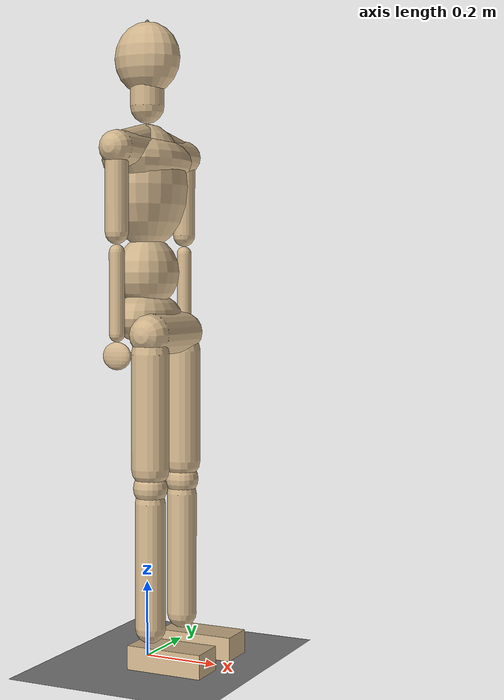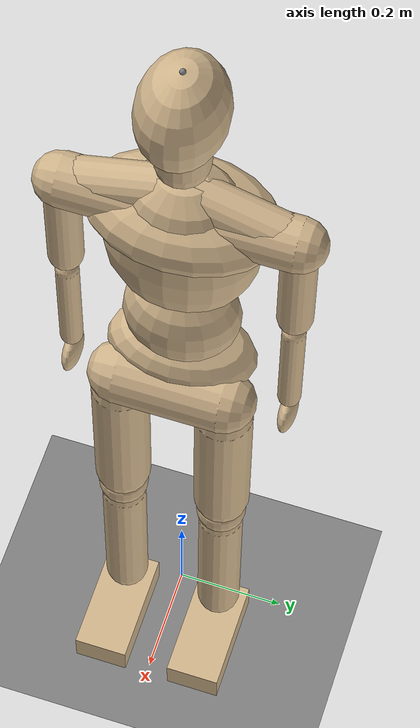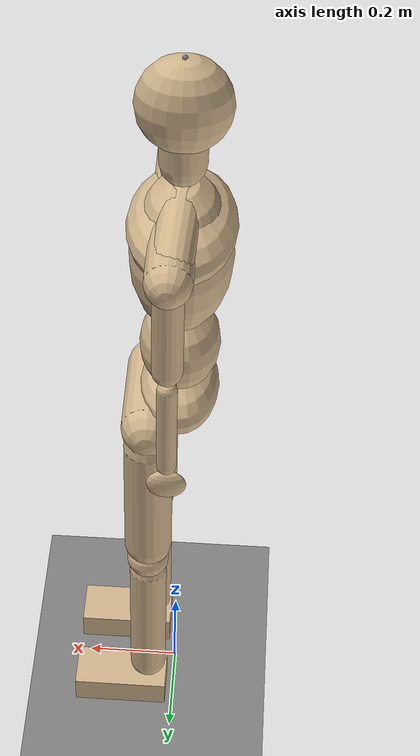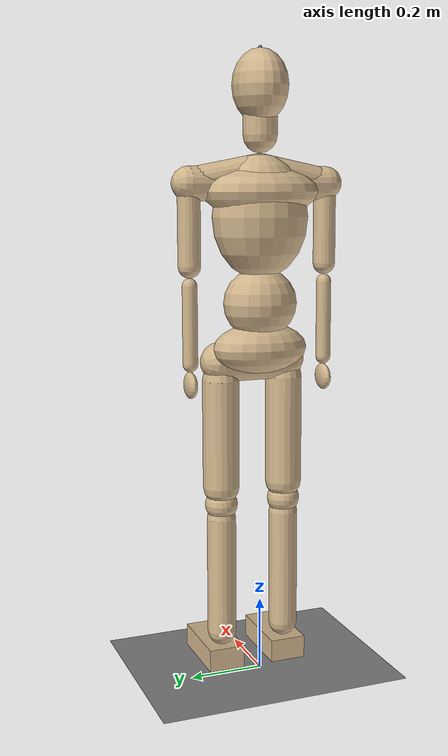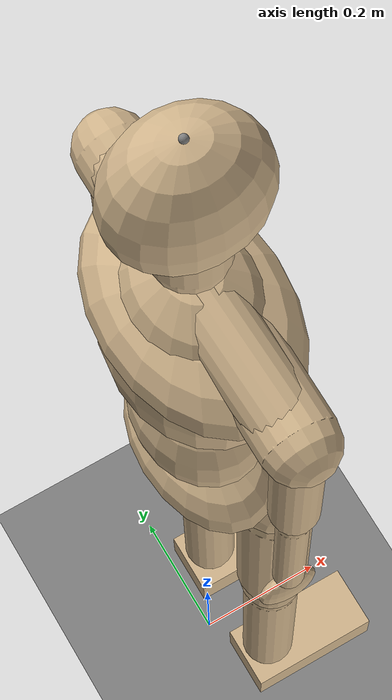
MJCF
<!-- GENERATED by scripts/pre_processor.py from models/freyja_template.xml and the Google Sheet (snapshot sha256:4db751576eb9). Do not edit; change the inputs and rebuild. -->
<mujoco model="freyja">
    <compiler angle="degree"/>
    <option timestep="0.002" gravity="0 0 -9.81"/>
    <asset>
        <texture type="skybox" builtin="gradient" rgb1="0.4 0.6 0.8" rgb2="0 0 0" width="512" height="3072" mark="random" markrgb="1 1 1"/>
    </asset>

    <worldbody>
        <geom name="floor" type="plane" size="10 10 0.1"  pos="0 0 0"/> <!--floor must be at z=0: the sheet's pelvis pos_z is the standing height above it--> <!--design choice, no sheet source-->
        <light pos="0 0 3" dir="0 0 -1"/>

        <body name="pelvis" pos="0 0 0.964735874439">
            <inertial pos="-0.00101007040359 -0.000224460089686 -0.0260373704036" mass="9.49" fullinertia="0.0989845173877 0.0745999725899 0.119532082342 1.19532082342e-05 -0.0138179087188 1.19532082342e-05"/>
            <geom type="capsule" fromto="0.0566394618834 -0.0923013452915 -0.0975457399103 0.0566394618834 0.0923013452915 -0.0975457399103" size="0.055" mass="0" rgba="0.82 0.71 0.55 1.0"/> <!--hip girdle: capsule centres on the hip joint centres-->
            <geom type="ellipsoid" pos="0 0 -0.0561150224215" size="0.08 0.13 0.0673380269058" mass="0" rgba="0.82 0.71 0.55 1.0"/> <!--iliac wings; reaches up into the abdomen--> <!--design choice, no sheet source-->
            <joint type="free"/>

            <body name="thigh_right" pos="0.0566394618834 -0.0923013452915 -0.0975457399103">
                <inertial pos="-0.0306094336323 -0.00357772600897 -0.149866967265" mass="9.49" fullinertia="0.144118169569 0.153566082871 0.0541380428871 0.000599867511214 0.00734837701238 0.00734837701238"/>
                <geom type="capsule" fromto="0 0 -0.05 0 0 -0.347525112108" size="0.05" mass="0" rgba="0.82 0.71 0.55 1.0"/> <!--end spheres touch both joints-->
                <joint name="hip_fe_right" type="hinge" axis="0 -1 0" limited="true" range="-18.1 133.8"/> <!--fe=flexion/extension-->
                <joint name="hip_aa_right" type="hinge" axis="1 0 0" limited="true" range="-40.5 25.6"/> <!--aa=ab/adduction-->
                <joint name="hip_ier_right" type="hinge" axis="0 0 1" limited="true" range="-44.2 44.4"/> <!--ier=internal/external rotation-->

                <body name="shank_right" pos="0 0 -0.397525112108">
                    <inertial pos="-0.0199412860987 -0.0126159156951 -0.164413869058" mass="2.925" fullinertia="0.0379800998191 0.0379800998191 0.00484440048713 -4.84440048713e-05 0.000193776019485 -0.00174398417537"/>
                    <geom type="capsule" fromto="0 0 -0.04 0 0 -0.366965022422" size="0.04" mass="0" rgba="0.82 0.71 0.55 1.0"/> <!--end spheres touch both joints-->
                    <geom type="sphere" pos="0 0 0" size="0.045" mass="0" rgba="0.82 0.71 0.55 1.0"/> <!--centred on the knee-->
                    <joint name="knee_right" type="hinge" axis="0 1 0" limited="true" range="-1.6 141.9"/>

                    <body name="foot_right" pos="0 0 -0.406965022422">
                        <inertial pos="0.04455 -0.006435 -0.03597" mass="0.65" fullinertia="0.000511421625 0.002167790625 0.002293434 -6.37065e-05 -0.0001769625 2.8314e-05"/>
                        <geom type="box" pos="0.061875 0 -0.03135" size="0.103125 0.050 0.03135" friction="1.0 0.005 0.0001" condim="3" rgba="0.82 0.71 0.55 1.0"/> <!--sole on the floor at neutral. extend condim to 4 for foot turning--> <!--design choice, no sheet source-->
                        <site name="site_sole_right" pos="0 0 -0.0627"/> <!--ankle joint centre minus the ankle height: the floor at neutral-->
                        <joint name="ankle_pdflex_right" type="hinge" axis="0 -1 0" limited="true" range="-62.1 25"/> <!--pdflex=plantar/dorsiflexion-->
                        <joint name="ankle_ie_right" type="hinge" axis="1 0 0" limited="true" range="-19.2 36.2"/> <!--ie=inversion/eversion-->
                    </body>
                </body>
            </body>

            <!--mirroring in y. "0 1 0" axis stays unchanged "1 0 0" and "0 0 1" flip signs as do all com, position, and inertial elements involving y-->
            <body name="thigh_left" pos="0.0566394618834 0.0923013452915 -0.0975457399103">
                <inertial pos="-0.0306094336323 0.00357772600897 -0.149866967265" mass="9.49" fullinertia="0.144118169569 0.153566082871 0.0541380428871 -0.000599867511214 0.00734837701238 -0.00734837701238"/>
                <geom type="capsule" fromto="0 0 -0.05 0 0 -0.347525112108" size="0.05" mass="0" rgba="0.82 0.71 0.55 1.0"/> <!--end spheres touch both joints-->
                <joint name="hip_fe_left" type="hinge" axis="0 -1 0" limited="true" range="-18.1 133.8"/> <!--fe=flexion/extension-->
                <joint name="hip_aa_left" type="hinge" axis="-1 0 0" limited="true" range="-40.5 25.6"/> <!--aa=ab/adduction-->
                <joint name="hip_ier_left" type="hinge" axis="0 0 -1" limited="true" range="-44.2 44.4"/> <!--ier=internal/external rotation-->

                <body name="shank_left" pos="0 0 -0.397525112108">
                    <inertial pos="-0.0199412860987 0.0126159156951 -0.164413869058" mass="2.925" fullinertia="0.0379800998191 0.0379800998191 0.00484440048713 4.84440048713e-05 0.000193776019485 0.00174398417537"/>
                    <geom type="capsule" fromto="0 0 -0.04 0 0 -0.366965022422" size="0.04" mass="0" rgba="0.82 0.71 0.55 1.0"/> <!--end spheres touch both joints-->
                    <geom type="sphere" pos="0 0 0" size="0.045" mass="0" rgba="0.82 0.71 0.55 1.0"/> <!--centred on the knee-->
                    <joint name="knee_left" type="hinge" axis="0 1 0" limited="true" range="-1.6 141.9"/>

                    <body name="foot_left" pos="0 0 -0.406965022422">
                        <inertial pos="0.04455 0.006435 -0.03597" mass="0.65" fullinertia="0.000511421625 0.002167790625 0.002293434 6.37065e-05 -0.0001769625 -2.8314e-05"/>
                        <geom type="box" pos="0.061875 0 -0.03135" size="0.103125 0.050 0.03135" friction="1.0 0.005 0.0001" condim="3" rgba="0.82 0.71 0.55 1.0"/> <!--sole on the floor at neutral. extend condim to 4 for foot turning--> <!--design choice, no sheet source-->
                        <site name="site_sole_left" pos="0 0 -0.0627"/> <!--ankle joint centre minus the ankle height: the floor at neutral-->
                        <joint name="ankle_pdflex_left" type="hinge" axis="0 -1 0" limited="true" range="-62.1 25"/> <!--pdflex=plantar/dorsiflexion-->
                        <joint name="ankle_ie_left" type="hinge" axis="-1 0 0" limited="true" range="-19.2 36.2"/> <!--ie=inversion/eversion-->
                    </body>
                </body>
            </body>

            <!--spine joints: pos="0 0 jpos_z" puts the hinge at the joint centre (e.g. the lumbosacral joint, below the abdomen origin) instead of at the body origin-->
            <body name="abdomen" pos="0 0 0.126914349776">
                <inertial pos="0.0309671013453 -0.000634571748879 -0.052669455157" mass="2.665" fullinertia="0.0192694037659 0.0129850626848 0.0254507228621 3.86332443514e-05 0.00171703308228 0.000107314567643"/>
                <geom type="ellipsoid" pos="0 0 -0.0634571748879" size="0.08 0.10 0.0951857623318" mass="0" rgba="0.82 0.71 0.55 1.0"/> <!--waist; overlaps the pelvis and thorax so there is no pinch--> <!--design choice, no sheet source-->
                <joint name="lsj_fe" type="hinge" pos="0 0 -0.126914349776" axis="0 1 0"/> <!-- FIXME(pre_processor): no ROM in sheet for lumbosacral_extension, lumbosacral_flexion; joint left unlimited --> <!--lsj_fe= lumbrosacral joint flexion/extension. ROM fills in automatically once it is in the sheet--> <!--axis +y: the moving segment is ABOVE this joint, so +angle bends forward (flexion); the hip, shoulder and elbow use -y because their segment hangs below-->
                <joint name="lsj_lat" type="hinge" pos="0 0 -0.126914349776" axis="1 0 0"/> <!-- FIXME(pre_processor): no ROM in sheet for lumbosacral_lateral_bending; joint left unlimited --> <!--lsj_lat= lumbrosacral joint lateral bending. ROM fills in automatically once it is in the sheet-->
                <joint name="lsj_ax" type="hinge" pos="0 0 -0.126914349776" axis="0 0 1"/> <!-- FIXME(pre_processor): no ROM in sheet for lumbosacral_axial_rotation; joint left unlimited --> <!--lsj_ax= lumbosacral joint axial bending. ROM fills in automatically once it is in the sheet-->

                <body name="thorax" pos="0 0 0.328299103139">
                    <inertial pos="0.00689428116592 -0.000328299103139 -0.173341926457" mass="17.095" fullinertia="0.280244896072 0.225706770341 0.200648712572 0.00165825382291 -0.0265320611666 -0.000184250424768"/>
                    <geom type="ellipsoid" pos="0 0 -0.16414955157" size="0.10 0.13 0.16414955157" mass="0" rgba="0.82 0.71 0.55 1.0"/> <!--rib cage, spans joint to joint--> <!--design choice, no sheet source-->
                    <geom type="ellipsoid" pos="0 0 -0.0984897309417" size="0.105 0.16 0.0656598206278" mass="0" rgba="0.82 0.71 0.55 1.0"/> <!--upper chest: fills out towards the shoulders--> <!--design choice, no sheet source-->
                    <geom type="capsule" fromto="0.013794347058 -0.192059755192 -0.0774605642489 0.013794347058 0.192059755192 -0.0774605642489" size="0.045" mass="0" rgba="0.82 0.71 0.55 1.0"/> <!--shoulder girdle: centres on the shoulder joint centres-->
                    <geom type="capsule" fromto="0 0 -0.04 0.013794347058 -0.192059755192 -0.0774605642489" size="0.04" mass="0" rgba="0.82 0.71 0.55 1.0"/> <!--trapezius: neck base to shoulder-->
                    <geom type="capsule" fromto="0 0 -0.04 0.013794347058 0.192059755192 -0.0774605642489" size="0.04" mass="0" rgba="0.82 0.71 0.55 1.0"/>
                    <joint name="tj_fe" type="hinge" pos="0 0 -0.328299103139" axis="0 1 0" /> <!--tj_fe= thoracic joint flexion/extension. FIXME add rom when available-->
                    <joint name="tj_lat" type="hinge" pos="0 0 -0.328299103139" axis="1 0 0"/> <!--tj_lat= thoracic  joint lateral bending FIXME add rom when available-->
                    <joint name="tj_ax" type="hinge" pos="0 0 -0.328299103139" axis="0 0 1"/> <!--tj_ax= thoracic  joint axial bending FIXME add rom when available-->

                    <body name="upper_arm_right" pos="0.013794347058 -0.192059755192 -0.0774605642489">
                        <inertial pos="-0.017739 0.006804 -0.110322" mass="1.43" fullinertia="0.009195523623 0.009195523623 0.002440318023 0.000211100175 7.5996063e-05 -0.001655025372"/>
                        <geom type="capsule" fromto="0 0 -0.03 0 0 -0.213" size="0.03" mass="0" rgba="0.82 0.71 0.55 1.0"/> <!--end spheres touch both joints-->
                        <joint name="shoulder_fe_right" type="hinge" axis="0 -1 0" limited="true" range="-57.3 172"/>    <!--fe=flexion/extension--> <!--placeholder shoulder architecture-->
                        <joint name="shoulder_aa_right" type="hinge" axis="1 0 0"/> <!-- FIXME(pre_processor): no ROM in sheet for shoulder_adduction; joint left unlimited -->    <!--aa=ab/adduction-->
                        <joint name="shoulder_ier_right" type="hinge" axis="0 0 1"/> <!-- FIXME(pre_processor): no ROM in sheet for shoulder_external_rotation, shoulder_internal_rotation; joint left unlimited -->   <!--ier=int/external rotation-->

                        <body name="forearm_right" pos="0 0 -0.243">
                            <inertial pos="0.005187 -0.004693 -0.101517" mass="0.845" fullinertia="0.003484956098 0.0032220378125 0.001010431058 -8.2484168e-05 0.00051552605 0.0008712390245"/>
                            <geom type="capsule" fromto="0 0 -0.02 0 0 -0.227" size="0.02" mass="0" rgba="0.82 0.71 0.55 1.0"/> <!--end spheres touch both joints-->
                            <joint name="elbow_right" type="hinge" axis="0 -1 0" limited="true" range="-4.7 150"/>

                                <body name="hand_right" pos="0 0 -0.247">
                                    <inertial pos="0.005467 -0.003408 -0.054528" mass="0.325" fullinertia="0.0006502511925 0.00055113253 0.0003029262925 -8.66673925e-05 0.0001377831325 0.00012844468"/>
                                    <geom type="ellipsoid" pos="0 0 -0.0355" size="0.04 0.015 0.0355" mass="0" rgba="0.82 0.71 0.55 1.0"/> <!--wrist to fingertip end--> <!--design choice, no sheet source-->
                                    <joint name="wrist_right" type="hinge" axis="1 0 0" limited="true" range="-74 74.8"/>
                                </body>
                        </body>
                    </body>

                    <body name="upper_arm_left" pos="0.013794347058 0.192059755192 -0.0774605642489">
                        <inertial pos="-0.017739 -0.006804 -0.110322" mass="1.43" fullinertia="0.009195523623 0.009195523623 0.002440318023 -0.000211100175 7.5996063e-05 0.001655025372"/>
                        <geom type="capsule" fromto="0 0 -0.03 0 0 -0.213" size="0.03" mass="0" rgba="0.82 0.71 0.55 1.0"/> <!--end spheres touch both joints-->
                        <joint name="shoulder_fe_left" type="hinge" axis="0 -1 0" limited="true" range="-57.3 172"/>    <!--fe=flexion/extension--> <!--placeholder shoulder architecture-->
                        <joint name="shoulder_aa_left" type="hinge" axis="-1 0 0"/> <!-- FIXME(pre_processor): no ROM in sheet for shoulder_adduction; joint left unlimited -->    <!--aa=ab/adduction-->
                        <joint name="shoulder_ier_left" type="hinge" axis="0 0 -1"/> <!-- FIXME(pre_processor): no ROM in sheet for shoulder_external_rotation, shoulder_internal_rotation; joint left unlimited -->   <!--ier=int/external rotation-->

                        <body name="forearm_left" pos="0 0 -0.243">
                            <inertial pos="0.005187 0.004693 -0.101517" mass="0.845" fullinertia="0.003484956098 0.0032220378125 0.001010431058 8.2484168e-05 0.00051552605 -0.0008712390245"/>
                            <geom type="capsule" fromto="0 0 -0.02 0 0 -0.227" size="0.02" mass="0" rgba="0.82 0.71 0.55 1.0"/> <!--end spheres touch both joints-->
                            <joint name="elbow_left" type="hinge" axis="0 -1 0" limited="true" range="-4.7 150"/>

                                <body name="hand_left" pos="0 0 -0.247">
                                    <inertial pos="0.005467 0.003408 -0.054528" mass="0.325" fullinertia="0.0006502511925 0.00055113253 0.0003029262925 8.66673925e-05 0.0001377831325 -0.00012844468"/>
                                    <geom type="ellipsoid" pos="0 0 -0.0355" size="0.04 0.015 0.0355" mass="0" rgba="0.82 0.71 0.55 1.0"/> <!--wrist to fingertip end--> <!--design choice, no sheet source-->
                                    <joint name="wrist_left" type="hinge" axis="-1 0 0" limited="true" range="-74 74.8"/>

                                </body>
                        </body>
                    </body>

                    <body name="head_and_neck" pos="0 0 0">
                        <inertial pos="0.00424586188341 -0.000265366367713 0.152585661435" mass="4.355" fullinertia="0.0257914592689 0.0276008482069 0.0162231652238 -3.06676091188e-05 -0.000490681745901 0"/>
                        <geom type="ellipsoid" pos="0 0 0.170366367713" size="0.09 0.072 0.095" mass="0" rgba="0.82 0.71 0.55 1.0"/> <!--top of the head is the vertex--> <!--design choice, no sheet source-->
                        <geom type="capsule" fromto="0 0 0.045 0 0 0.170366367713" size="0.045" mass="0" rgba="0.82 0.71 0.55 1.0"/> <!--neck: tip at the cervical joint, ends in the head-->
                        <site name="site_vertex" pos="0 0 0.265366367713"/> <!--vertex = cervical joint + head_neck_length; the stature check reads it-->
                        <joint name="cj_fe" type="hinge" axis="0 1 0" /> <!--cj_fe= cervical joint flexion/extension. FIXME add rom when available-->
                        <joint name="cj_lat" type="hinge" axis="1 0 0"/> <!--cj_lat= cervical  joint lateral bending FIXME add rom when available-->
                        <joint name="cj_ax" type="hinge" axis="0 0 1"/> <!--cj_ax= cervical  joint axial bending FIXME add rom when available-->
                    </body>
                </body>
            </body>
        </body>
    </worldbody>
</mujoco>
